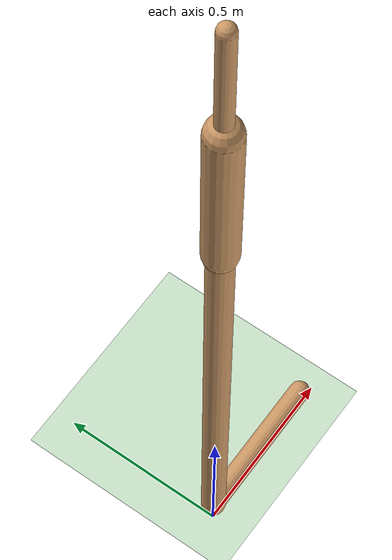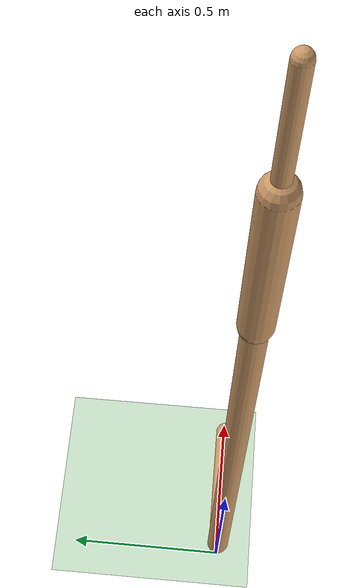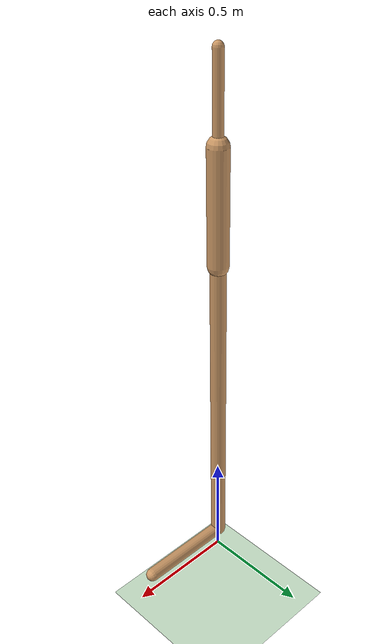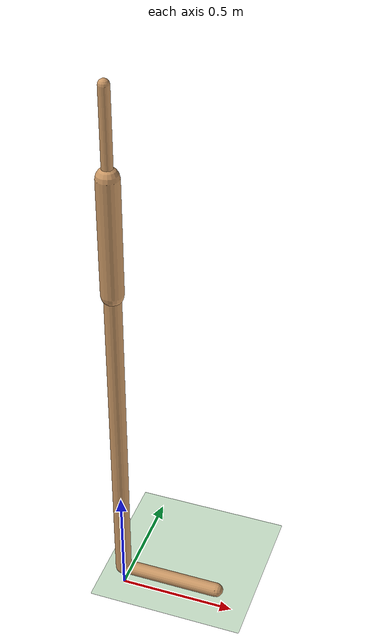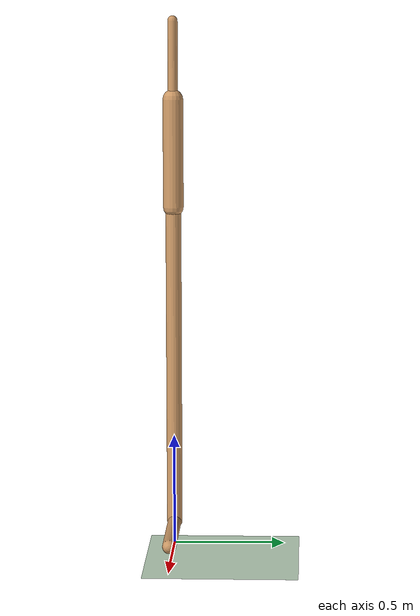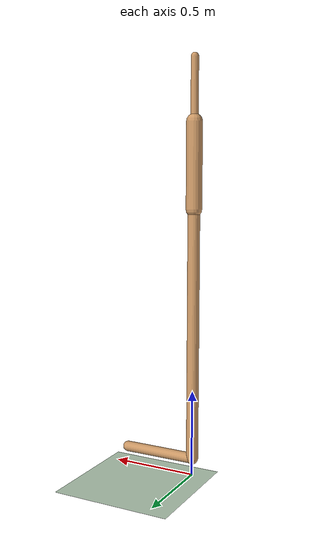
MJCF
<mujoco model="walker2d">
  <compiler angle="degree" inertiafromgeom="true" />
  <default>
    <joint armature="0.01" damping=".1" limited="true" />
    <geom conaffinity="0" condim="3" contype="1" density="1000" friction=".7 .1 .1" rgba="0.8 0.6 .4 1" />
  </default>
  <option integrator="RK4" timestep="0.002" />
  <worldbody>
    <light cutoff="100" diffuse="1 1 1" dir="-0 0 -1.3" directional="true" exponent="1" pos="0 0 1.3" specular=".1 .1 .1" />
    <geom conaffinity="1" condim="3" name="floor" pos="0 0 0" rgba="0.8 0.9 0.8 1" size="40 40 40" type="plane" material="MatPlane" />
    <body name="torso" pos="0 0 2.2056052297353745">
      <camera name="track" mode="trackcom" pos="0 -5 -1.25" xyaxes="1 0 0 0 0 1" />
      <joint armature="0" axis="1 0 0" damping="0" limited="false" name="rootx" pos="0 0 -1.25" stiffness="0" type="slide" />
      <joint armature="0" axis="0 0 1" damping="0" limited="false" name="rootz" pos="0 0 -1.25" ref="1.25" stiffness="0" type="slide" />
      <joint armature="0" axis="0 1 0" damping="0" limited="false" name="rooty" pos="0 0 0" stiffness="0" type="hinge" />
      <geom friction="0.9" name="torso_geom" size="0.021760255098342896 0.1740446537733078" type="capsule" />
      <body name="thigh" pos="0 0 -0.1740446537733078">
        <joint axis="0 -1 0" name="thigh_joint" pos="0 0 0" range="-150 0" type="hinge" />
        <site name="torso_thigh_site" pos="0 0 0" size="0.01" type="sphere" rgba="1 0 0 0.5" />
        <geom friction="0.9" pos="0 0 -0.24114450812339783" name="thigh_geom" size="0.04546403884887695 0.24114450812339783" type="capsule" />
        <body name="leg" pos="0 0 -1.2069247961044312">
          <joint axis="0 -1 0" name="leg_joint" pos="0 0 0.7246357798576355" range="-150 0" type="hinge" />
          <site name="thigh_leg_site" pos="0 0 0.25" size="0.01" type="sphere" rgba="1 0 0 0.5" />
          <geom friction="0.9" name="leg_geom" size="0.0346955731511116 0.7246357798576355" type="capsule" />
          <body name="foot" pos="0.4290018379688263 0 -0.8246357798576355">
            <joint axis="0 -1 0" name="foot_joint" pos="-0.4290018379688263 0 0.1" range="-45 45" type="hinge" />
            <site name="leg_foot_site" pos="-0.2 0 0.1" size="0.01" type="sphere" rgba="1 0 0 0.5" />
            <geom friction="0.9" pos="-0.21450091898441315 0 0.1" quat="0.70710678118654757 0 -0.70710678118654746 0" name="foot_geom" size="0.030442042276263237 0.21450091898441315" type="capsule" />
          </body>
        </body>
      </body>

      <body name="thigh_left" pos="0 0 -0.1740446537733078">
        <joint axis="0 -1 0" name="thigh_left_joint" pos="0 0 0" range="-150 0" type="hinge" />
        <site name="torso_thigh_left_site" pos="0 0 0" size="0.01" type="sphere" rgba="1 0 0 0.5" />
        <geom friction="0.9" name="thigh_left_geom" rgba=".7 .3 .6 1" size="0.04546403884887695 0.24114450812339783" pos="0 0 -0.24114450812339783" type="capsule" />
        <body name="leg_left" pos="0 0 -1.2069247961044312">
          <joint axis="0 -1 0" name="leg_left_joint" pos="0 0 0.7246357798576355" range="-150 0" type="hinge" />
          <site name="thigh_leg_left_site" pos="0 0 0.25" size="0.01" type="sphere" rgba="1 0 0 0.5" />
          <geom friction="0.9" name="leg_left_geom" rgba=".7 .3 .6 1" size="0.0346955731511116 0.7246357798576355" type="capsule" />
          <body name="foot_left" pos="0.4290018379688263 0 -0.8246357798576355">
            <joint axis="0 -1 0" name="foot_left_joint" pos="-0.4290018379688263 0 0.1" range="-45 45" type="hinge" />
            <site name="leg_foot_left_site" pos="-0.2 0 0.1" size="0.01" type="sphere" rgba="1 0 0 0.5" />
            <geom friction="1.9" name="foot_left_geom" rgba=".7 .3 .6 1" size="0.030442042276263237 0.21450091898441315" pos="-0.21450091898441315 0 0.1" type="capsule" quat="0.70710678118654757 0 -0.70710678118654746 0" />
          </body>
        </body>
      </body>
    </body>
  </worldbody>
  <actuator>

    <motor ctrllimited="true" ctrlrange="-1.0 1.0" gear="88.61166095796996" joint="thigh_joint" />
    <motor ctrllimited="true" ctrlrange="-1.0 1.0" gear="218.0760213411401" joint="leg_joint" />
    <motor ctrllimited="true" ctrlrange="-1.0 1.0" gear="55.21718036932557" joint="foot_joint" />
    <motor ctrllimited="true" ctrlrange="-1.0 1.0" gear="88.61166095796996" joint="thigh_left_joint" />
    <motor ctrllimited="true" ctrlrange="-1.0 1.0" gear="218.0760213411401" joint="leg_left_joint" />
    <motor ctrllimited="true" ctrlrange="-1.0 1.0" gear="55.21718036932557" joint="foot_left_joint" />

  </actuator>
    <asset>
        <texture type="skybox" builtin="gradient" rgb1=".4 .5 .6" rgb2="0 0 0" width="100" height="100" />
        <texture builtin="flat" height="1278" mark="cross" markrgb="1 1 1" name="texgeom" random="0.01" rgb1="0.8 0.6 0.4" rgb2="0.8 0.6 0.4" type="cube" width="127" />
        <texture builtin="checker" height="100" name="texplane" rgb1="0 0 0" rgb2="0.8 0.8 0.8" type="2d" width="100" />
        <material name="MatPlane" reflectance="0.5" shininess="1" specular="1" texrepeat="60 60" texture="texplane" />
        <material name="geom" texture="texgeom" texuniform="true" />
    </asset>

  <sensor>
    <force site="torso_thigh_site" name="torso_thigh_sensor" />
    <force site="thigh_leg_site" name="thigh_leg_sensor" />
    <force site="leg_foot_site" name="leg_foot_sensor" />
    <force site="torso_thigh_left_site" name="torso_thigh_left_sensor" />
    <force site="thigh_leg_left_site" name="thigh_leg_left_sensor" />
    <force site="leg_foot_left_site" name="leg_foot_left_sensor" />
  </sensor>
</mujoco>
